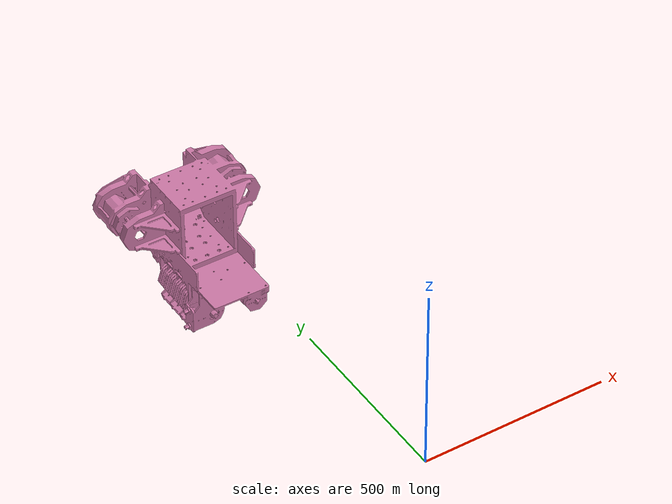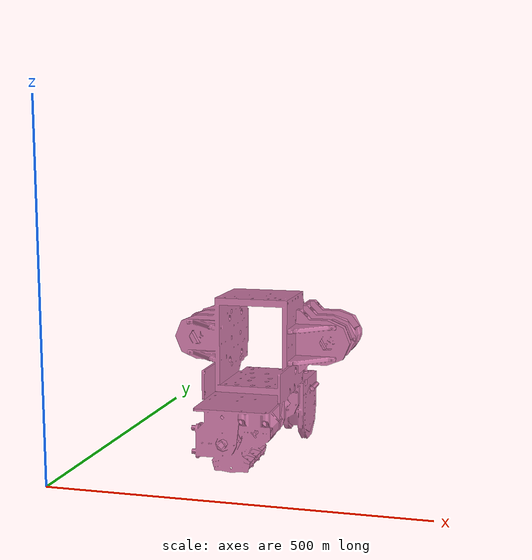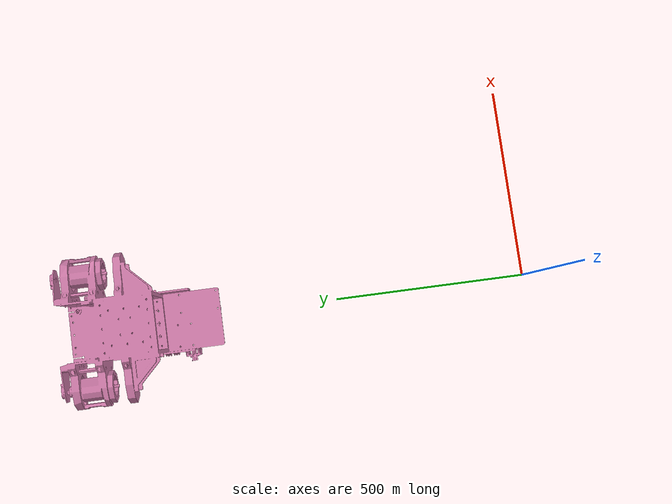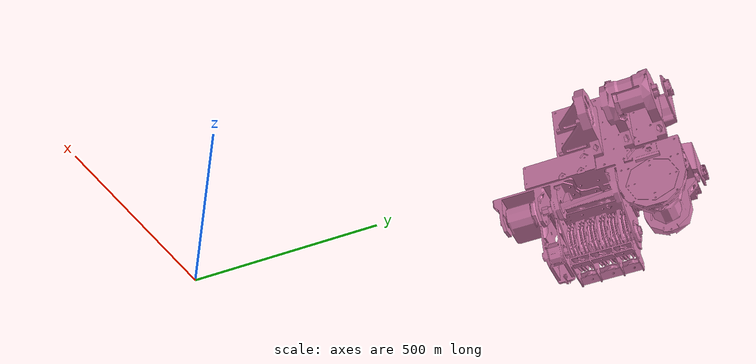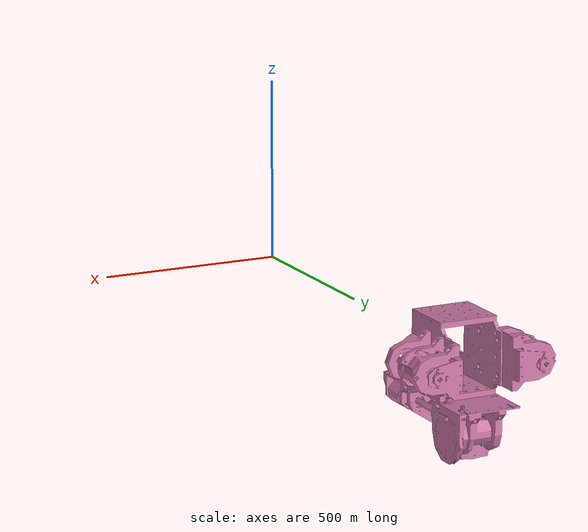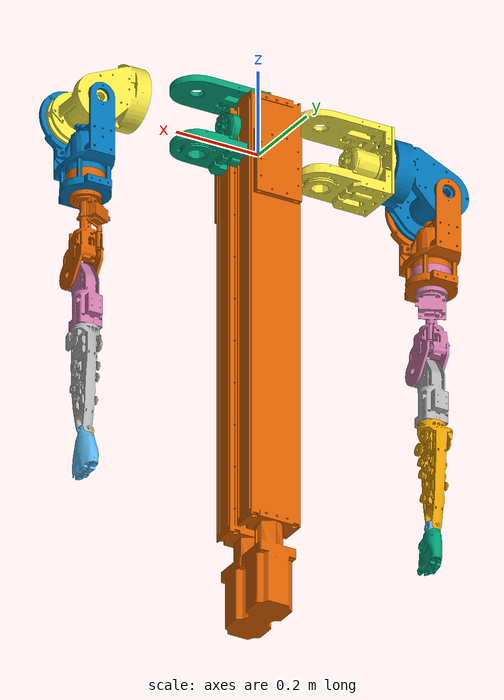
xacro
<?xml version="1.0"?>
<robot name="dual_arm" xmlns:xacro="http://www.ros.org/wiki/xacro">
    <xacro:include filename="$(find moa_description)/urdf/left_arm_moa_transmission.xacro"/>
    <xacro:include filename="$(find moa_description)/urdf/right_arm_moa_transmission.xacro"/>

    <link name="map"/>

    <xacro:left_arm/>
    <xacro:right_arm/>

    <link name="linear_rail_base">
      <visual>
        <geometry>
          <mesh filename="package://moa_description/mesh/visual/moa_torso_rails.dae" scale = "0.001 0.001 0.001"/>
        </geometry>
        <origin rpy="${pi/2} 0 0" xyz="0 0 -1.109"/>
      </visual>
    </link>

    <link name="linear_rail_torso_base">
      <visual>
        <geometry>
          <mesh filename="package://moa_description/mesh/visual/moa_torso_base.dae"/>
        </geometry>
        <origin rpy="0 0 0" xyz="0 0 0"/>
      </visual>
    </link>

    <joint name="root_map_link" type="fixed">
      <origin rpy="0 0 0" xyz="0 0 0"/>
      <parent link="map"/>
      <child link="linear_rail_base"/>
    </joint>

    <joint name="rail_torso_link" type="fixed">
      <origin rpy="0 0 0" xyz="0 0 0"/>
      <parent link="linear_rail_base"/>
      <child link="linear_rail_torso_base"/>
    </joint>

    <joint name="left_to_map_link" type="fixed">
      <origin rpy="0 0 0" xyz="0 0 0"/>
      <parent link="linear_rail_torso_base"/>
      <child link="human/left_arm_mount"/>
    </joint>

    <joint name="right_to_map_link" type="fixed">
      <origin rpy="0 0 0" xyz="0 0 0"/>
      <parent link="map"/>
      <child link="human/right_arm_mount"/>
    </joint>

    <!-- Uncomment after adding hand -->

    <link name="moa_left_servoing" />
    <joint name="moa_left_servoing_joint" type="fixed">
      <parent link="human/left_arm_ref_frame" />
      <child link = "moa_left_servoing" />
      <origin xyz="0.0 0.0 0.0" rpy="0 ${pi/2} 0" />
      <dynamics damping="1.0"/>
    </joint>

    <link name="moa_right_servoing" />
    <joint name="moa_right_servoing_joint" type="fixed">
      <parent link="human/right_arm_ref_frame" />
      <child link = "moa_right_servoing" />
      <origin xyz="0.0 0.0 0.0" rpy="0 ${3*pi/2} 0" />
      <dynamics damping="1.0"/>
    </joint>

  <link name="polhemus_base" />
  <joint name="map_2_polhemus" type="fixed">
    <parent link="map" />
    <child link = "polhemus_base" />
    <origin xyz="0.0 -0.1 0.1" rpy="0.0 0.0 0.0" />
    <dynamics damping="1.0"/>
  </joint>

</robot>

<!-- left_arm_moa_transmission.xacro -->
<robot name="human_left_arm" xmlns:xacro="http://www.ros.org/wiki/xacro">

  <xacro:macro name="left_arm" params="">

    <link name="human/left_arm_mount"/>

    <link name="human/left_arm_ref_frame">
      <visual>
        <geometry>
          <mesh filename="package://moa_description/mesh/visual_left/moa_shoulder_bend.stl" scale = "0.001 0.001 0.001"/>
        </geometry>
        <origin rpy="0 ${pi/2} 0" xyz="0 0 0"/>
      </visual>
	  <collision>
        <geometry>
          <mesh filename="package://moa_description/mesh/visual_left/moa_shoulder_bend.stl" scale = "0.001 0.001 0.001"/>
        </geometry>
        <origin rpy="0 ${pi/2} 0" xyz="0 0 0"/>
    </collision>
    </link>
    <link name="human/left_arm_frame0">
      <visual>
        <geometry>
          <mesh filename="package://moa_description/mesh/visual_left/moa_shoulder_flex.stl" scale = "0.001 0.001 0.001"/>
        </geometry>
        <origin rpy="0 0 0" xyz="0 0 0"/>
      </visual>
    <collision>
        <geometry>
          <mesh filename="package://moa_description/mesh/visual_left/moa_shoulder_flex.stl" scale = "0.001 0.001 0.001"/>
        </geometry>
        <origin rpy="0 0 0" xyz="0 0 0"/>
    </collision>
    </link>
    <link name="human/left_arm_frame1">
      <visual>
        <geometry>
          <mesh filename="package://moa_description/mesh/visual_left/moa_shoulder_rot.stl" scale = "0.001 0.001 0.001"/>
        </geometry>
        <origin rpy="${pi/2} 0 0" xyz="0 0 0"/>
      </visual>
    <collision>
        <geometry>
          <mesh filename="package://moa_description/mesh/visual_left/moa_shoulder_rot.stl" scale = "0.001 0.001 0.001"/>
        </geometry>
        <origin rpy="${pi/2} 0 0" xyz="0 0 0"/>
    </collision>
    </link>
    <link name="human/left_arm_frame2">
      <visual>
        <geometry>
          <mesh filename="package://moa_description/mesh/visual_left/moa_elbow_base.stl" scale = "0.001 0.001 0.001"/>
        </geometry>
        <origin rpy="0 0 0" xyz="0 0 0"/>
      </visual>
    <collision>
        <geometry>
          <mesh filename="package://moa_description/mesh/visual_left/moa_elbow_base.stl" scale = "0.001 0.001 0.001"/>
        </geometry>
        <origin rpy="0 0 0" xyz="0 0 0"/>
    </collision>
    </link>
    <link name="human/left_arm_frame3">
      <visual>
        <geometry>
          <mesh filename="package://moa_description/mesh/visual_left/moa_elbow_forearm.stl" scale = "0.001 0.001 0.001"/>
        </geometry>
        <origin rpy="0 0 0" xyz="0 0 0"/>
      </visual>

    <collision>
        <geometry>
          <mesh filename="package://moa_description/mesh/visual_left/moa_elbow_forearm.stl" scale = "0.001 0.001 0.001"/>
        </geometry>
        <origin rpy="0 0 0" xyz="0 0 0"/>
    </collision>

    </link>
    <link name="human/left_arm_frame4">
      <visual>
        <geometry>
          <mesh filename="package://moa_description/mesh/visual_left/moa_forearm_base.stl" scale = "0.001 0.001 0.001"/>
        </geometry>
        <origin rpy="0 0 0" xyz="0 0 0"/>
      </visual>
    <collision>
        <geometry>
          <mesh filename="package://moa_description/mesh/visual_left/moa_forearm_base.stl" scale = "0.001 0.001 0.001"/>
        </geometry>
        <origin rpy="0 0 0" xyz="0 0 0"/>
    </collision>

    </link>
    <link name="human/left_arm_frame5">
      <visual>
        <geometry>
          <mesh filename="package://moa_description/mesh/visual_left/moa_wrist_base.stl" scale = "0.001 0.001 0.001"/>
        </geometry>
        <origin rpy="0 0 0" xyz="0 0 0"/>
      </visual>
    <collision>
        <geometry>
          <mesh filename="package://moa_description/mesh/visual_left/moa_wrist_base.stl" scale = "0.001 0.001 0.001"/>
        </geometry>
        <origin rpy="0 0 0" xyz="0 0 0"/>
    </collision>

    </link>
    <link name="human/left_arm_frame6">
      <visual>
        <geometry>
          <mesh filename="package://moa_description/mesh/visual_left/moa_hand_piv.stl" scale = "0.001 0.001 0.001"/>
        </geometry>
        <origin rpy="0 0 ${pi}" xyz="0 0 0"/>
      </visual>
    <collision>
        <geometry>
          <mesh filename="package://moa_description/mesh/visual_left/moa_hand_piv.stl" scale = "0.001 0.001 0.001"/>
        </geometry>
        <origin rpy="0 0 ${pi}" xyz="0 0 0"/>
    </collision>
    </link>

    <link name="human/left_arm_frame7"/>
    <!-- Joints -->
    <joint name="left_shoulder_ref_frame_joint" type="revolute">
      <origin rpy="0 ${-pi/2} 0" xyz="0.15 0 0"/>
      <parent link="human/left_arm_mount"/>
      <child link="human/left_arm_ref_frame"/>
      <limit effort="1" lower="-0.5" upper="0.5" velocity="1"/>
    </joint>
    <!-- SHOULDER : spherical -->

<!-- Let joint_X be the joint this transmission element is being added to: -->

    <joint name="left_shoulder_1_flex_exte" type="revolute">
      <origin rpy="0 ${pi/2} 0" xyz="0.046 0 -0.18"/>
	<!--origin rpy="0 ${pi/2} 0" xyz="0.18 0 0.046"/-->
      <axis xyz="-1 0 0"/>
      <parent link="human/left_arm_ref_frame"/>
      <child link="human/left_arm_frame0"/>
      <limit effort="1" lower="-1.57079632679" upper="2.35619449019" velocity="1"/>
    </joint>

    <joint name="left_shoulder_2_abdu_addu" type="revolute">
      <origin rpy="${-pi/2} 0 0" xyz="0.09 0 -0.05"/>
      <axis xyz="0 0 -1"/>
      <parent link="human/left_arm_frame0"/>
      <child link="human/left_arm_frame1"/>
      <limit effort="1" lower="-1.57079632679" upper="1.57079632679" velocity="1"/>
    </joint>

    <joint name="left_shoulder_3_rotation" type="revolute">
      <origin rpy="${pi/2} 0 0" xyz="0 0.16 0"/>
      <axis xyz="0 0 1"/>
      <parent link="human/left_arm_frame1"/>
      <child link="human/left_arm_frame2"/>
      <limit effort="1" lower="-1.57079632679" upper="1.57079632679" velocity="1"/>
    </joint>

    <!-- END SHOULDER -->
    <joint name="left_elbow_4_flex_exte" type="revolute">
      <origin rpy="0 0 0" xyz="0 -0.03 -0.228"/>
      <axis xyz="-1 0 0"/>
      <parent link="human/left_arm_frame2"/>
      <child link="human/left_arm_frame3"/>
      <limit effort="1" lower="0.0" upper="2.7925268" velocity="1"/>
    </joint>

    <joint name="left_wrist_5_abdu_addu" type="revolute">
      <origin rpy="0 0 0" xyz="0 0 0"/>
      <axis xyz="1 0 0"/>
      <parent link="human/left_arm_frame5"/>
      <child link="human/left_arm_frame6"/>
      <limit effort="1" lower="-0.78539816339" upper="0.78539816339" velocity="1"/>
    </joint>

    <joint name="left_wrist_6_flex_exte" type="revolute">
      <origin rpy="0 0 0" xyz="0 -0.003 -0.26389"/>
      <axis xyz="0 1 0"/>
      <parent link="human/left_arm_frame4"/>
      <child link="human/left_arm_frame5"/>
      <limit effort="1" lower="-1.57079632679" upper="1.57079632679" velocity="1"/>
    </joint>

    <joint name="left_7_prona_supin" type="revolute">
      <origin rpy="0 0 ${pi}" xyz="0 0.03 -0.11951"/>
      <axis xyz="0 0 1"/>
      <parent link="human/left_arm_frame3"/>
      <child link="human/left_arm_frame4"/>
      <limit effort="1" lower="-${pi}" upper="${pi}" velocity="1"/>
    </joint>

    <joint name="left_wrist_hand" type="fixed">
      <origin rpy="${pi} 0 ${pi/2}" xyz="0 0 0"/>
      <parent link="human/left_arm_frame6"/>
      <child link="human/left_arm_frame7"/>
    </joint>

<transmission name="left_shoulder_ref_frame_joint_trans">
  <type>transmission_interface/SimpleTransmission</type>
  <joint name="left_shoulder_ref_frame_joint">
    <hardwareInterface>hardware_interface/PositionJointInterface</hardwareInterface>
  </joint>
  <actuator name="left_shoulder_ref_frame_joint_motor">
    <mechanicalReduction>1</mechanicalReduction>
  </actuator>
</transmission>
<transmission name="left_shoulder_1_flex_exte_trans">
  <type>transmission_interface/SimpleTransmission</type>
  <joint name="left_shoulder_1_flex_exte">
    <hardwareInterface>hardware_interface/PositionJointInterface</hardwareInterface>
  </joint>
  <actuator name="left_shoulder_1_flex_exte_motor">
    <mechanicalReduction>1</mechanicalReduction>
  </actuator>
</transmission>
<transmission name="left_shoulder_2_abdu_addu_trans">
  <type>transmission_interface/SimpleTransmission</type>
  <joint name="left_shoulder_2_abdu_addu">
    <hardwareInterface>hardware_interface/PositionJointInterface</hardwareInterface>
  </joint>
  <actuator name="left_shoulder_2_abdu_addu_motor">
    <mechanicalReduction>1</mechanicalReduction>
  </actuator>
</transmission>
<transmission name="left_shoulder_3_rotation_trans">
  <type>transmission_interface/SimpleTransmission</type>
  <joint name="left_shoulder_3_rotation">
    <hardwareInterface>hardware_interface/PositionJointInterface</hardwareInterface>
  </joint>
  <actuator name="left_shoulder_3_rotation_motor">
    <mechanicalReduction>1</mechanicalReduction>
  </actuator>
</transmission>
<transmission name="left_elbow_4_flex_exte_trans">
  <type>transmission_interface/SimpleTransmission</type>
  <joint name="left_elbow_4_flex_exte">
    <hardwareInterface>hardware_interface/PositionJointInterface</hardwareInterface>
  </joint>
  <actuator name="left_elbow_4_flex_exte_motor">
    <mechanicalReduction>1</mechanicalReduction>
  </actuator>
</transmission>
<transmission name="left_wrist_5_abdu_addu_trans">
  <type>transmission_interface/SimpleTransmission</type>
  <joint name="left_wrist_5_abdu_addu">
    <hardwareInterface>hardware_interface/PositionJointInterface</hardwareInterface>
  </joint>
  <actuator name="left_wrist_5_abdu_addu_motor">
    <mechanicalReduction>1</mechanicalReduction>
  </actuator>
</transmission>
<transmission name="left_wrist_6_flex_exte_trans">
  <type>transmission_interface/SimpleTransmission</type>
  <joint name="left_wrist_6_flex_exte">
    <hardwareInterface>hardware_interface/PositionJointInterface</hardwareInterface>
  </joint>
  <actuator name="left_wrist_6_flex_exte_motor">
    <mechanicalReduction>1</mechanicalReduction>
  </actuator>
</transmission>
<transmission name="left_7_prona_supin_trans">
  <type>transmission_interface/SimpleTransmission</type>
  <joint name="left_7_prona_supin">
    <hardwareInterface>hardware_interface/PositionJointInterface</hardwareInterface>
  </joint>
  <actuator name="left_7_prona_supin_motor">
    <mechanicalReduction>1</mechanicalReduction>
  </actuator>
</transmission>
  </xacro:macro>

</robot>

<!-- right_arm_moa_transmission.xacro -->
<robot name="human_right_arm" xmlns:xacro="http://www.ros.org/wiki/xacro">

  <xacro:macro name="right_arm" params="">

    <link name="human/right_arm_ref_frame">
      <visual>
        <geometry>
          <mesh filename="package://moa_description/mesh/visual_right/moa_shoulder_bend.stl" scale = "0.001 0.001 0.001"/>
        </geometry>
        <origin rpy="0 ${-pi/2} 0" xyz="0 0 0"/>
      </visual>
      <collision>
        <geometry>
          <mesh filename="package://moa_description/mesh/visual_right/moa_shoulder_bend.stl" scale = "0.001 0.001 0.001"/>
        </geometry>
        <origin rpy="0 ${-pi/2} 0" xyz="0 0 0"/>
      </collision>
    </link>
    <link name="human/right_arm_frame0">
      <visual>
        <geometry>
          <mesh filename="package://moa_description/mesh/visual_right/moa_shoulder_flex.stl" scale = "0.001 0.001 0.001"/>
        </geometry>
        <origin rpy="0 0 0" xyz="0 0 0"/>
      </visual>
      <collision>
        <geometry>
          <mesh filename="package://moa_description/mesh/visual_right/moa_shoulder_flex.stl" scale = "0.001 0.001 0.001"/>
        </geometry>
        <origin rpy="0 0 0" xyz="0 0 0"/>
      </collision>
    </link>
    <link name="human/right_arm_frame1">
      <visual>
        <geometry>
          <mesh filename="package://moa_description/mesh/visual_right/moa_shoulder_rot.stl" scale = "0.001 0.001 0.001"/>
        </geometry>
        <origin rpy="${pi/2} 0 0" xyz="0 0 0"/>
      </visual>
      <collision>
        <geometry>
          <mesh filename="package://moa_description/mesh/visual_right/moa_shoulder_rot.stl" scale = "0.001 0.001 0.001"/>
        </geometry>
        <origin rpy="${pi/2} 0 0" xyz="0 0 0"/>
      </collision>
    </link>
    <link name="human/right_arm_frame2">
      <visual>
        <geometry>
          <mesh filename="package://moa_description/mesh/visual_right/moa_elbow_base.stl" scale = "0.001 0.001 0.001"/>
        </geometry>
        <origin rpy="0 0 0" xyz="0 0 0"/>
      </visual>
      <collision>
        <geometry>
          <mesh filename="package://moa_description/mesh/visual_right/moa_elbow_base.stl" scale = "0.001 0.001 0.001"/>
        </geometry>
        <origin rpy="0 0 0" xyz="0 0 0"/>
      </collision>
    </link>
    <link name="human/right_arm_frame3">
      <visual>
        <geometry>
          <mesh filename="package://moa_description/mesh/visual_right/moa_elbow_forearm.stl" scale = "0.001 0.001 0.001"/>
        </geometry>
        <origin rpy="0 0 0" xyz="0 0 0"/>
      </visual>
      <collision>
        <geometry>
          <mesh filename="package://moa_description/mesh/visual_right/moa_elbow_forearm.stl" scale = "0.001 0.001 0.001"/>
        </geometry>
        <origin rpy="0 0 0" xyz="0 0 0"/>
      </collision>
    </link>
    <link name="human/right_arm_frame4">
      <visual>
        <geometry>
          <mesh filename="package://moa_description/mesh/visual_right/moa_forearm_base.stl" scale = "0.001 0.001 0.001"/>
        </geometry>
        <origin rpy="0 0 0" xyz="0 0 0"/>
      </visual>
      <collision>
        <geometry>
          <mesh filename="package://moa_description/mesh/visual_right/moa_forearm_base.stl" scale = "0.001 0.001 0.001"/>
        </geometry>
        <origin rpy="0 0 0" xyz="0 0 0"/>
      </collision>
    </link>
    <link name="human/right_arm_frame5">
      <visual>
        <geometry>
          <mesh filename="package://moa_description/mesh/visual_right/moa_wrist_base.stl" scale = "0.001 0.001 0.001"/>
        </geometry>
        <origin rpy="0 0 0" xyz="0 0 0"/>
      </visual>
      <collision>
        <geometry>
          <mesh filename="package://moa_description/mesh/visual_right/moa_wrist_base.stl" scale = "0.001 0.001 0.001"/>
        </geometry>
        <origin rpy="0 0 0" xyz="0 0 0"/>
      </collision>
    </link>
    <link name="human/right_arm_frame6">
      <visual>
        <geometry>
          <mesh filename="package://moa_description/mesh/visual_right/moa_hand_piv.stl" scale = "0.001 0.001 0.001"/>
        </geometry>
        <origin rpy="0 0 ${pi}" xyz="0 0 0"/>
      </visual>
      <collision>
        <geometry>
          <mesh filename="package://moa_description/mesh/visual_right/moa_hand_piv.stl" scale = "0.001 0.001 0.001"/>
        </geometry>
        <origin rpy="0 0 ${pi}" xyz="0 0 0"/>
      </collision>
    </link>

    <link name="human/right_arm_mount"/>

    <link name="human/right_arm_frame7"/>
    <!-- Joints -->
    <joint name="right_shoulder_ref_frame_joint" type="revolute">
      <origin rpy="0 ${pi/2} 0" xyz="-0.15 0 0"/>
      <parent link="human/right_arm_mount"/>
      <child link="human/right_arm_ref_frame"/>
      <limit effort="1" lower="-0.25" upper="0.25" velocity="1"/>
    </joint>
    <!-- SHOULDER : spherical -->

    <joint name="right_shoulder_1_flex_exte" type="revolute">
      <origin rpy="0 ${-pi/2} 0" xyz="-0.046 0 -0.18"/>
      <axis xyz="-1 0 0"/>
      <parent link="human/right_arm_ref_frame"/>
      <child link="human/right_arm_frame0"/>
      <limit effort="1" lower="-1.57079632679" upper="2.35619449019" velocity="1"/>
    </joint>

    <joint name="right_shoulder_2_abdu_addu" type="revolute">
      <origin rpy="${-pi/2} 0 0" xyz="-0.09 0 -0.05"/>
      <axis xyz="0 0 1"/>
      <parent link="human/right_arm_frame0"/>
      <child link="human/right_arm_frame1"/>
      <limit effort="1" lower="-1.57079632679" upper="1.57079632679" velocity="1"/>
    </joint>

    <joint name="right_shoulder_3_rotation" type="revolute">
      <origin rpy="${pi/2} 0 0" xyz="0 0.16 0"/>
      <axis xyz="0 0 1"/>
      <parent link="human/right_arm_frame1"/>
      <child link="human/right_arm_frame2"/>
      <limit effort="1" lower="-1.57079632679" upper="1.57079632679" velocity="1"/>
    </joint>

    <!-- END SHOULDER -->
    <joint name="right_elbow_4_flex_exte" type="revolute">
      <origin rpy="0 0 0" xyz="0 -0.03 -0.228"/>
      <axis xyz="-1 0 0"/>
      <parent link="human/right_arm_frame2"/>
      <child link="human/right_arm_frame3"/>
      <limit effort="1" lower="0.0" upper="2.7925268" velocity="1"/>
    </joint>

    <joint name="right_wrist_5_abdu_addu" type="revolute">
      <origin rpy="0 0 0" xyz="0 0 0"/>
      <axis xyz="1 0 0"/>
      <parent link="human/right_arm_frame5"/>
      <child link="human/right_arm_frame6"/>
      <limit effort="1" lower="-0.78539816339" upper="0.78539816339" velocity="1"/>
    </joint>

    <joint name="right_wrist_6_flex_exte" type="revolute">
      <origin rpy="0 0 0" xyz="0 -0.003 -0.26389"/>
      <axis xyz="0 1 0"/>
      <parent link="human/right_arm_frame4"/>
      <child link="human/right_arm_frame5"/>
      <limit effort="1" lower="-1.57079632679" upper="1.57079632679" velocity="1"/>
    </joint>

    <joint name="right_7_prona_supin" type="revolute">
      <origin rpy="0 0 ${pi}" xyz="0 0.03 -0.11951"/>
      <axis xyz="0 0 -1"/>
      <parent link="human/right_arm_frame3"/>
      <child link="human/right_arm_frame4"/>
      <limit effort="1" lower="-${pi}" upper="${pi}" velocity="1"/>
    </joint>

    <joint name="right_wrist_hand" type="fixed">
      <origin rpy="${pi} 0 ${pi/2}" xyz="0 0 0"/>
      <parent link="human/right_arm_frame6"/>
      <child link="human/right_arm_frame7"/>
    </joint>

<transmission name="right_shoulder_ref_frame_joint_trans">
  <type>transmission_interface/SimpleTransmission</type>
  <joint name="right_shoulder_ref_frame_joint">
    <hardwareInterface>hardware_interface/PositionJointInterface</hardwareInterface>
  </joint>
  <actuator name="right_shoulder_ref_frame_joint_motor">
    <mechanicalReduction>1</mechanicalReduction>
  </actuator>
</transmission>
<transmission name="right_shoulder_1_flex_exte_trans">
  <type>transmission_interface/SimpleTransmission</type>
  <joint name="right_shoulder_1_flex_exte">
    <hardwareInterface>hardware_interface/PositionJointInterface</hardwareInterface>
  </joint>
  <actuator name="right_shoulder_1_flex_exte_motor">
    <mechanicalReduction>1</mechanicalReduction>
  </actuator>
</transmission>
<transmission name="right_shoulder_2_abdu_addu_trans">
  <type>transmission_interface/SimpleTransmission</type>
  <joint name="right_shoulder_2_abdu_addu">
    <hardwareInterface>hardware_interface/PositionJointInterface</hardwareInterface>
  </joint>
  <actuator name="right_shoulder_2_abdu_addu_motor">
    <mechanicalReduction>1</mechanicalReduction>
  </actuator>
</transmission>
<transmission name="right_shoulder_3_rotation_trans">
  <type>transmission_interface/SimpleTransmission</type>
  <joint name="right_shoulder_3_rotation">
    <hardwareInterface>hardware_interface/PositionJointInterface</hardwareInterface>
  </joint>
  <actuator name="right_shoulder_3_rotation_motor">
    <mechanicalReduction>1</mechanicalReduction>
  </actuator>
</transmission>
<transmission name="right_elbow_4_flex_exte_trans">
  <type>transmission_interface/SimpleTransmission</type>
  <joint name="right_elbow_4_flex_exte">
    <hardwareInterface>hardware_interface/PositionJointInterface</hardwareInterface>
  </joint>
  <actuator name="right_elbow_4_flex_exte_motor">
    <mechanicalReduction>1</mechanicalReduction>
  </actuator>
</transmission>
<transmission name="right_wrist_5_abdu_addu_trans">
  <type>transmission_interface/SimpleTransmission</type>
  <joint name="right_wrist_5_abdu_addu">
    <hardwareInterface>hardware_interface/PositionJointInterface</hardwareInterface>
  </joint>
  <actuator name="right_wrist_5_abdu_addu_motor">
    <mechanicalReduction>1</mechanicalReduction>
  </actuator>
</transmission>
<transmission name="right_wrist_6_flex_exte_trans">
  <type>transmission_interface/SimpleTransmission</type>
  <joint name="right_wrist_6_flex_exte">
    <hardwareInterface>hardware_interface/PositionJointInterface</hardwareInterface>
  </joint>
  <actuator name="right_wrist_6_flex_exte_motor">
    <mechanicalReduction>1</mechanicalReduction>
  </actuator>
</transmission>
<transmission name="right_7_prona_supin_trans">
  <type>transmission_interface/SimpleTransmission</type>
  <joint name="right_7_prona_supin">
    <hardwareInterface>hardware_interface/PositionJointInterface</hardwareInterface>
  </joint>
  <actuator name="right_7_prona_supin_motor">
    <mechanicalReduction>1</mechanicalReduction>
  </actuator>
</transmission>
  </xacro:macro>

</robot>
